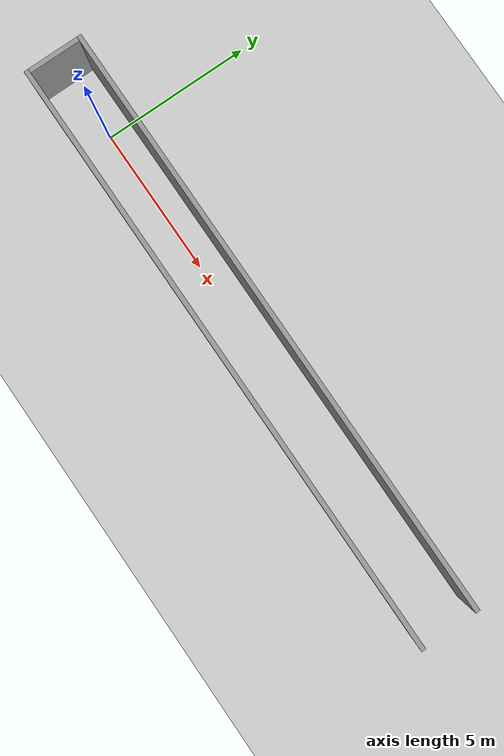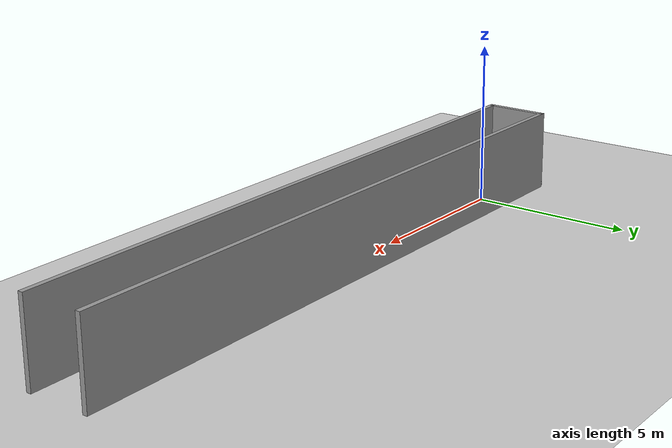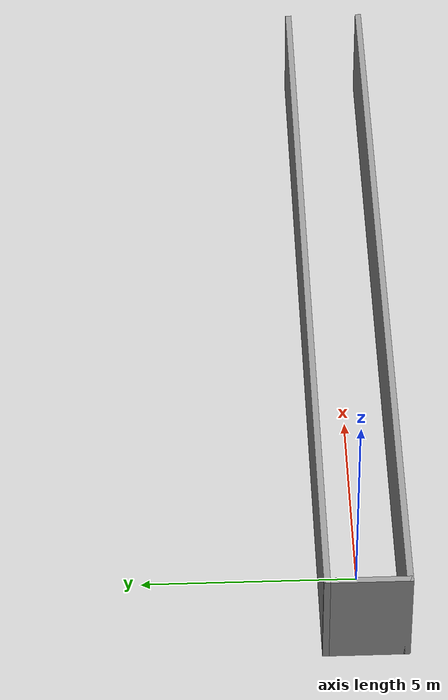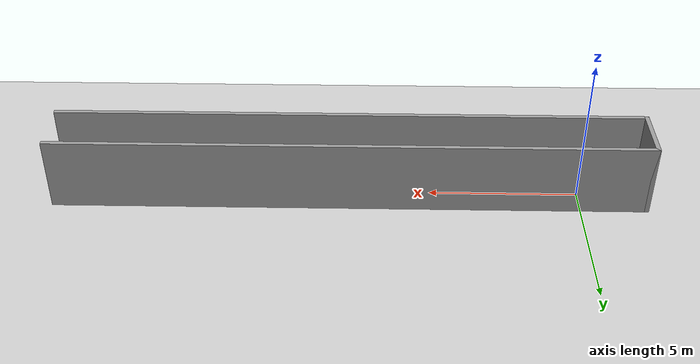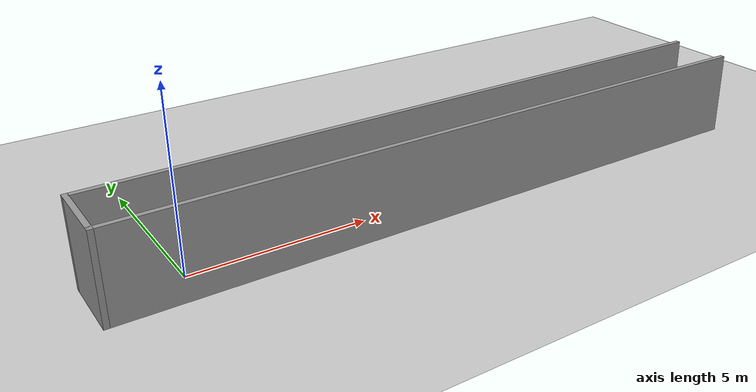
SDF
<sdf version="1.6">
 <world name="default">
  <light name="sun" type="directional">
   <pose>0 0 10 0 -0 0</pose>
   <diffuse>0.8 0.8 0.8 1</diffuse>
   <specular>0.2 0.2 0.2 1</specular>
   <attenuation>
    <range>1000</range>
    <constant>0.9</constant>
    <linear>0.01</linear>
    <quadratic>0.001</quadratic>
   </attenuation>
   <direction>-0.5 0.1 -0.9</direction>
  </light>
  <model name="ground_plane">
   <static>1</static>
   <link name="link">
    <collision name="collision">
     <geometry><plane><normal>0 0 1</normal><size>100 100</size></plane></geometry>
     <surface>
      <contact><collide_bitmask>65535</collide_bitmask></contact>
      <friction><ode><mu>100</mu><mu2>50</mu2></ode></friction>
     </surface>
    </collision>
    <visual name="visual">
     <cast_shadows>0</cast_shadows>
     <geometry><plane><normal>0 0 1</normal><size>100 100</size></plane></geometry>
     <material>
      <script><uri>file://media/materials/scripts/gazebo.material</uri><name>Gazebo/Grey</name></script>
     </material>
    </visual>
   </link>
  </model>
  <gravity>0 0 -9.8</gravity>
  <magnetic_field>6e-06 2.3e-05 -4.2e-05</magnetic_field>
  <atmosphere type="adiabatic"/>
  <physics name="default_physics" default="0" type="ode">
   <max_step_size>0.001</max_step_size>
   <real_time_factor>1</real_time_factor>
   <real_time_update_rate>1000</real_time_update_rate>
  </physics>
  <scene><ambient>0.4 0.4 0.4 1</ambient><background>0.7 0.7 0.7 1</background><shadows>1</shadows></scene>
  <spherical_coordinates>
   <surface_model>EARTH_WGS84</surface_model>
   <latitude_deg>0</latitude_deg>
   <longitude_deg>0</longitude_deg>
   <elevation>0</elevation>
   <heading_deg>0</heading_deg>
  </spherical_coordinates>
  <model name="dlugi_korytarz">
   <pose>7.71411 0.672003 0 0 -0 0</pose>
   <link name="Wall_61">
    <collision name="Wall_61_Collision">
     <geometry><box><size>20 0.15 2.5</size></box></geometry>
     <pose>0 0 1.25 0 -0 0</pose>
    </collision>
    <visual name="Wall_61_Visual">
     <pose>0 0 1.25 0 -0 0</pose>
     <geometry><box><size>20 0.15 2.5</size></box></geometry>
     <material>
      <script><uri>file://media/materials/scripts/gazebo.material</uri><name>Gazebo/Grey</name></script>
      <ambient>1 1 1 1</ambient>
     </material>
     <meta><layer>0</layer></meta>
    </visual>
    <pose>0 0.157017 0 0 -0 0</pose>
   </link>
   <link name="Wall_63">
    <collision name="Wall_63_Collision">
     <geometry><box><size>2 0.15 2.5</size></box></geometry>
     <pose>0 0 1.25 0 -0 0</pose>
    </collision>
    <visual name="Wall_63_Visual">
     <pose>0 0 1.25 0 -0 0</pose>
     <geometry><box><size>2 0.15 2.5</size></box></geometry>
     <material>
      <script><uri>file://media/materials/scripts/gazebo.material</uri><name>Gazebo/Grey</name></script>
      <ambient>1 1 1 1</ambient>
     </material>
     <meta><layer>0</layer></meta>
    </visual>
    <pose>-9.925 -0.767983 0 0 -0 -1.5708</pose>
   </link>
   <link name="Wall_64">
    <collision name="Wall_64_Collision">
     <geometry><box><size>20 0.15 2.5</size></box></geometry>
     <pose>0 0 1.25 0 -0 0</pose>
    </collision>
    <visual name="Wall_64_Visual">
     <pose>0 0 1.25 0 -0 0</pose>
     <geometry><box><size>20 0.15 2.5</size></box></geometry>
     <material>
      <script><uri>file://media/materials/scripts/gazebo.material</uri><name>Gazebo/Grey</name></script>
      <ambient>1 1 1 1</ambient>
     </material>
     <meta><layer>0</layer></meta>
    </visual>
    <pose>0 -1.69298 0 0 -0 0</pose>
   </link>
   <static>1</static>
  </model>
 </world>
</sdf>
